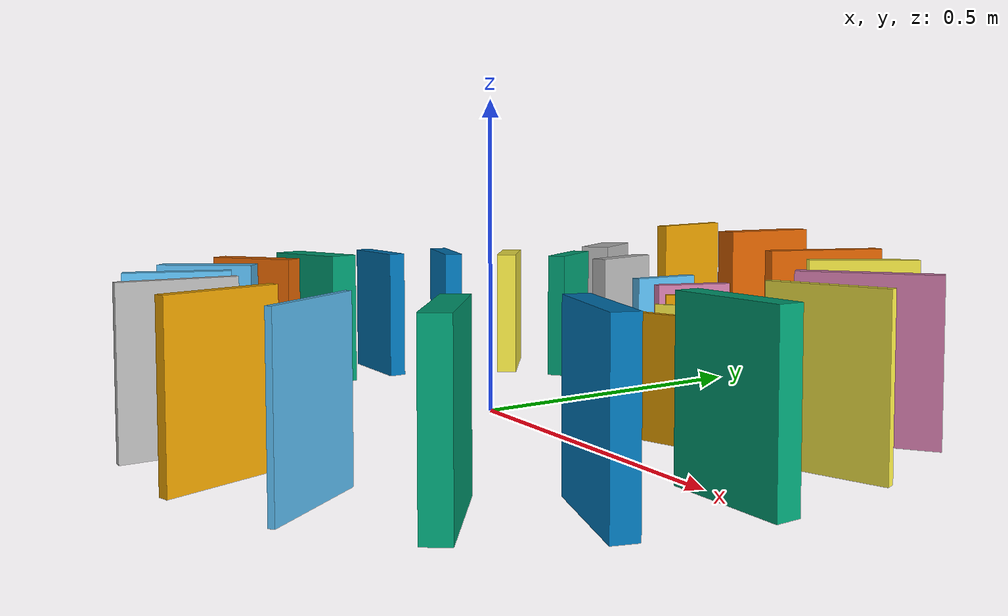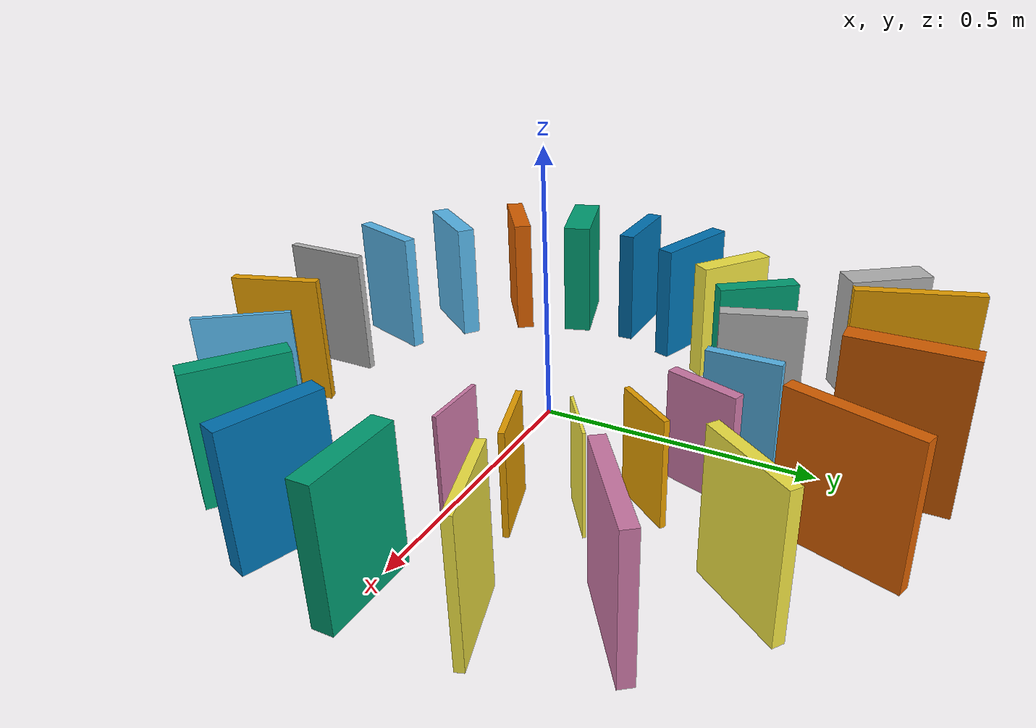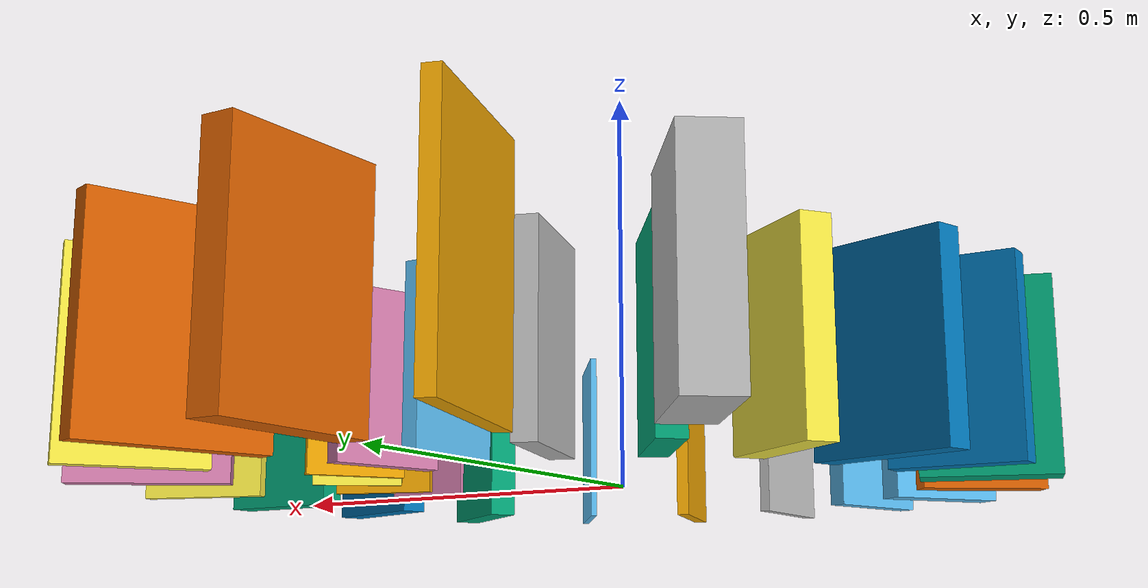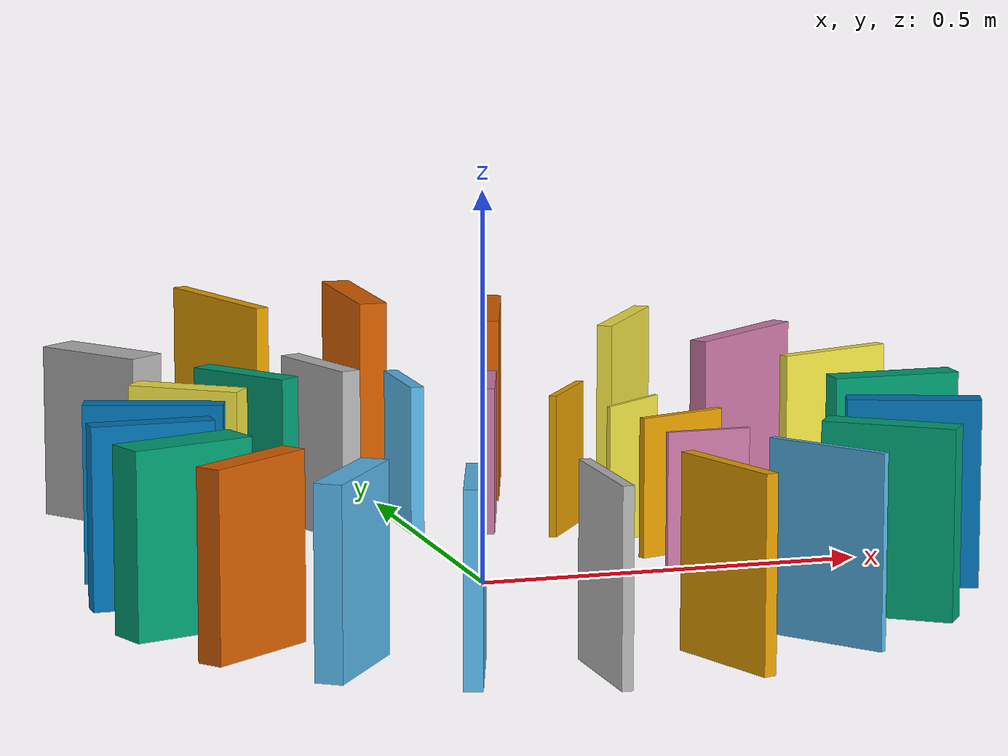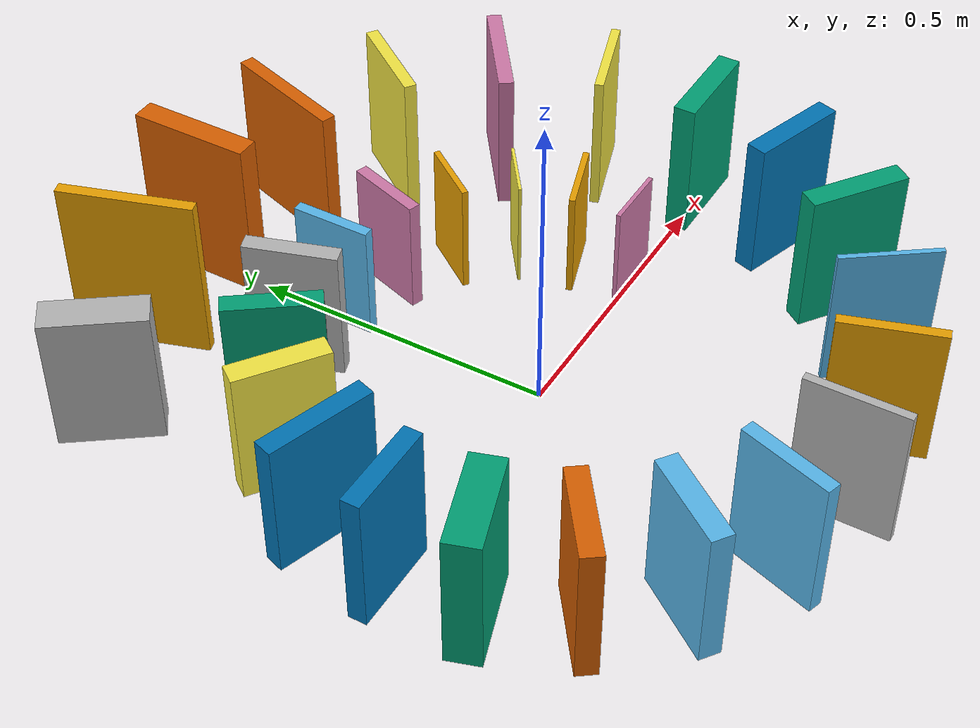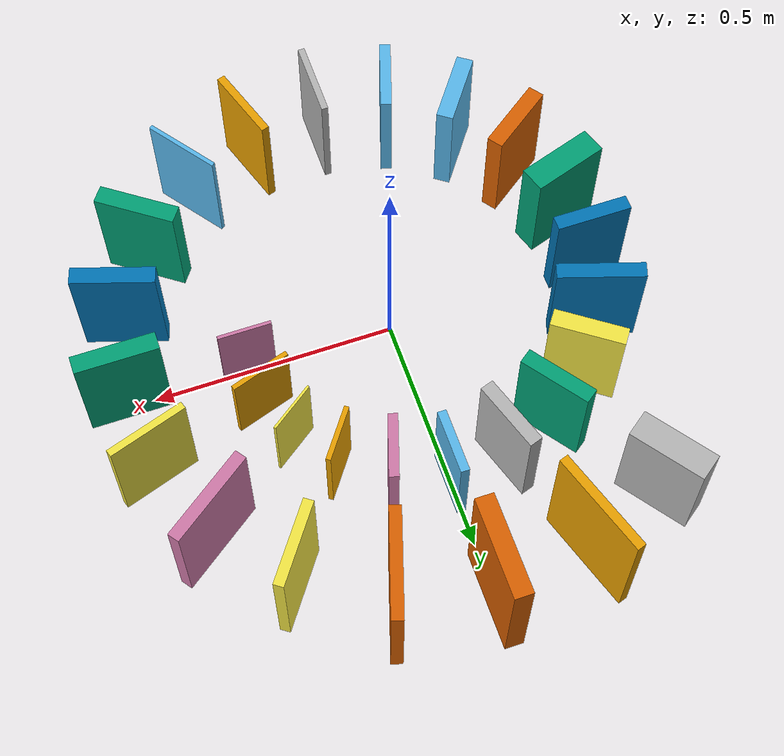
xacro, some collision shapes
<?xml version="1.0" ?>
<robot name="books_domino_spiral"
       xmlns:controller="http://playerstage.sourceforge.net/gazebo/xmlschema/#controller"
       xmlns:interface="http://playerstage.sourceforge.net/gazebo/xmlschema/#interface"
       xmlns:sensor="http://playerstage.sourceforge.net/gazebo/xmlschema/#sensor"
       xmlns:xacro="http://www.ros.org/wiki/xacro">

  <!--
       ROS URDF model of several books.
       Origin and center of mass are at the center of the mesh.

       (C) 2019 fnh, hendrich@informatik.uni-hamburg.de
  -->
  <!-- main body with Collada mesh for both visual and collision -->

  <property name="r0" value="0.3" />
  <property name="dr" value="0.04" />
  <property name="pi2" value="6.283" />

  <xacro:include filename="$(find tams_books_world)/urdf/book_cube.xacro" />

  <xacro:book_cube
      name="book_bobh"
      weight="0.210"
      mesh="book-bobh.dae"
      xsize="0.126"
      ysize="0.010"
      zsize="0.184"
  />

  <xacro:book_cube
      name="book_dyson"
      weight="0.228"
      mesh="book-dyson.dae"
      xsize="0.130"
      ysize="0.018"
      zsize="0.198"
  />

  <xacro:book_cube
      name="book_goedel"
      weight="1.100"
      mesh="book-goedel.dae"
      xsize="0.162"
      ysize="0.055"
      zsize="0.234"
  />

  <xacro:book_cube
      name="book_hamburg"
      weight="0.062"
      mesh="book-hamburg.dae"
      xsize="0.108"
      ysize="0.005"
      zsize="0.185"
  />

  <xacro:book_cube
      name="book_haykin"
      weight="1.316"
      mesh="book-haykin.dae"
      xsize="0.177"
      ysize="0.032"
      zsize="0.230"
  />

  <xacro:book_cube
      name="book_javaff"
      weight="0.906"
      mesh="book-javaff.dae"
      xsize="0.157"
      ysize="0.034"
      zsize="0.235"
  />

  <xacro:book_cube
      name="book_jekyll"
      weight="0.056"
      mesh="book-jekyll.dae"
      xsize="0.110"
      ysize="0.007"
      zsize="0.180"
  />

  <xacro:book_cube
      name="book_knuth_40"
      weight="0.400"
      mesh="book-knuth-40.dae"
      xsize="0.161"
      ysize="0.014"
      zsize="0.240"
  />

  <xacro:book_cube
      name="book_knuth_41"
      weight="0.498"
      mesh="book-knuth-41.dae"
      xsize="0.161"
      ysize="0.017"
      zsize="0.240"
  />

  <xacro:book_cube
      name="book_knuth_42"
      weight="0.274"
      mesh="book-knuth-42.dae"
      xsize="0.161"
      ysize="0.009"
      zsize="0.240"
  />

  <xacro:book_cube
      name="book_knuth"
      weight="1.080"
      mesh="book-knuth.dae"
      xsize="0.167"
      ysize="0.037"
      zsize="0.240"
  />

  <xacro:book_cube
      name="book_lagemann"
      weight="0.554"
      mesh="book-lagemann.dae"
      xsize="0.165"
      ysize="0.015"
      zsize="0.242"
  />

  <xacro:book_cube
      name="book_lakoff"
      weight="0.977"
      mesh="book-lakoff.dae"
      xsize="0.168"
      ysize="0.035"
      zsize="0.240"
  />

  <xacro:book_cube
      name="book_lskm"
      weight="0.978"
      mesh="book-lskm.dae"
      xsize="0.217"
      ysize="0.024"
      zsize="0.250"
  />

  <xacro:book_cube
      name="book_mead_conway"
      weight="0.972"
      mesh="book-mead-conway.dae"
      xsize="0.200"
      ysize="0.025"
      zsize="0.243"
  />

  <xacro:book_cube
      name="book_memory"
      weight="0.666"
      mesh="book-memory.dae"
      xsize="0.148"
      ysize="0.028"
      zsize="0.227"
  />

  <xacro:book_cube
      name="book_minsky"
      weight="0.764"
      mesh="book-minsky.dae"
      xsize="0.215"
      ysize="0.019"
      zsize="0.280"
  />

  <xacro:book_cube
      name="book_moeller"
      weight="0.592"
      mesh="book-moeller.dae"
      xsize="0.153"
      ysize="0.023"
      zsize="0.236"
  />

  <xacro:book_cube
      name="book_pdp1"
      weight="0.897"
      mesh="book-pdp1.dae"
      xsize="0.150"
      ysize="0.032"
      zsize="0.228"
  />

  <xacro:book_cube
      name="book_pdp2"
      weight="1.008"
      mesh="book-pdp2.dae"
      xsize="0.150"
      ysize="0.036"
      zsize="0.228"
  />

  <xacro:book_cube
      name="book_rojas"
      weight="0.666"
      mesh="book-rojas.dae"
      xsize="0.155"
      ysize="0.030"
      zsize="0.232"
  />

  <xacro:book_cube
      name="book_schmidt"
      weight="1.764"
      mesh="book-schmidt.dae"
      xsize="0.200"
      ysize="0.038"
      zsize="0.275"
  />

  <xacro:book_cube
      name="book_selfish"
      weight="0.246"
      mesh="book-selfish.dae"
      xsize="0.130"
      ysize="0.020"
      zsize="0.196"
  />

  <xacro:book_cube
      name="book_voynich"
      weight="2.0"
      mesh="voynich/book-voynich.dae"
      xsize="0.160"
      ysize="0.057"
      zsize="0.230"
  />

  <xacro:book_cube
      name="book_watson"
      weight="0.114"
      mesh="book-watson.dae"
      xsize="0.115"
      ysize="0.010"
      zsize="0.190"
  />

  <xacro:book_cube
      name="book_wiering"
      weight="0.964"
      mesh="book-wiering.dae"
      xsize="0.155"
      ysize="0.035"
      zsize="0.235"
  />

  <xacro:book_cube
      name="book_winograd"
      weight="0.777"
      mesh="book-winograd.dae"
      xsize="0.168"
      ysize="0.037"
      zsize="0.240"
  />

  <xacro:book_cube
      name="book_zuse"
      weight="0.764"
      mesh="book-zuse.dae"
      xsize="0.172"
      ysize="0.021"
      zsize="0.247"
  />

  <link name="world" />

<xacro:macro name="spiral_joint" params="book index height">
  <joint name="book_${index}_joint" type="floating">
    <parent link="world" />
    <child  link="${book}_link" />
    <origin xyz="${(r0+dr*pi2*index/100.0)*cos(pi2*index/100.0)}
                 ${(r0+dr*pi2*index/100.0)*sin(pi2*index/100.0)}
                 ${height/2}"
            rpy="0.0 0.0 ${(pi2*index/100.0)}" />
  </joint>
</xacro:macro>

<xacro:spiral_joint book="book_jekyll"   height="0.180" index="0" />
<xacro:spiral_joint book="book_bobh"     height="0.184" index="5" />
<xacro:spiral_joint book="book_hamburg"  height="0.185" index="10" />
<xacro:spiral_joint book="book_watson"   height="0.190" index="15" />
<xacro:spiral_joint book="book_selfish"  height="0.196" index="20" />

<xacro:spiral_joint book="book_dyson"    height="0.198" index="25" />
<xacro:spiral_joint book="book_memory"   height="0.227" index="30" />
<xacro:spiral_joint book="book_pdp1"     height="0.228" index="35" />
<xacro:spiral_joint book="book_pdp2"     height="0.228" index="40" />
<xacro:spiral_joint book="book_haykin"   height="0.230" index="45" />

<xacro:spiral_joint book="book_rojas"    height="0.232" index="50" />
<xacro:spiral_joint book="book_goedel"   height="0.234" index="55" />
<xacro:spiral_joint book="book_javaff"   height="0.235" index="60" />
<xacro:spiral_joint book="book_wiering"  height="0.235" index="65" />
<xacro:spiral_joint book="book_moeller"  height="0.238" index="70" />
<xacro:spiral_joint book="book_knuth_40" height="0.240" index="75" />

<xacro:spiral_joint book="book_knuth_41" height="0.240" index="80" />
<xacro:spiral_joint book="book_knuth_42" height="0.240" index="85" />
<xacro:spiral_joint book="book_knuth"    height="0.240" index="90" />
<xacro:spiral_joint book="book_lakoff"   height="0.240" index="95" />
<xacro:spiral_joint book="book_winograd" height="0.240" index="100" />

<xacro:spiral_joint book="book_lagemann" height="0.242" index="105" />
<xacro:spiral_joint book="book_mead_conway" height="0.243" index="110" />
<xacro:spiral_joint book="book_zuse"     height="0.247" index="115" />
<xacro:spiral_joint book="book_lskm"     height="0.250" index="120" />
<xacro:spiral_joint book="book_schmidt"  height="0.275" index="125" />
<xacro:spiral_joint book="book_minsky"   height="0.280" index="130" />

<xacro:spiral_joint book="book_voynich"  height="0.230" index="135" />

</robot>

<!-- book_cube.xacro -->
<robot name="book_cube"
       xmlns:controller="http://playerstage.sourceforge.net/gazebo/xmlschema/#controller"
       xmlns:interface="http://playerstage.sourceforge.net/gazebo/xmlschema/#interface"
       xmlns:sensor="http://playerstage.sourceforge.net/gazebo/xmlschema/#sensor"
       xmlns:xacro="http://www.ros.org/wiki/xacro">
  <!--
       basic ROS xacro macro for a "book": a cube with textures.
       Origin and center of mass are at the center of the mesh.

       (C) 2019 fnh, hendrich@informatik.uni-hamburg.de
  -->

<xacro:macro name="book_cube" params="name weight mesh xsize ysize zsize">

  <!-- main body with Collada mesh for both visual and collision -->
  <link name="${name}_link">
    <inertial>
      <mass value="${weight}"/>
      <origin rpy="0 0 0" xyz="0 0 0"/>
      <inertia ixx="${weight/12*(ysize*ysize+zsize*zsize)}"
               iyy="${weight/12*(xsize*xsize+zsize*zsize)}"
               izz="${weight/12*(xsize*xsize+ysize*ysize)}"
               ixy="0" ixz="0" iyz="0" />
    </inertial>
    <collision>
      <origin rpy="0 0 0" xyz="0 0 0"/>
      <geometry>
        <box size="${xsize} ${ysize} ${zsize}" rpy="0 0 0" />
      </geometry>
    </collision>
    <visual>
      <origin rpy="0 0 0" xyz="0 0 0"/>
      <geometry>
        <mesh filename="package://tams_books_world/meshes/${mesh}" scale="${0.5*xsize} ${0.5*ysize} ${0.5*zsize}" />
      </geometry>
    </visual>
  </link>
  <gazebo reference="${name}_link">
    <!-- material/texture definition for Gazebo -->
    <turnGravityOff>false</turnGravityOff>
    <selfCollide>true</selfCollide>
    <mu1>1</mu1>
    <mu2>1</mu2>
    <kp>10000000.0</kp>
    <kd>10.0</kd>
  </gazebo>
</xacro:macro>

</robot>
